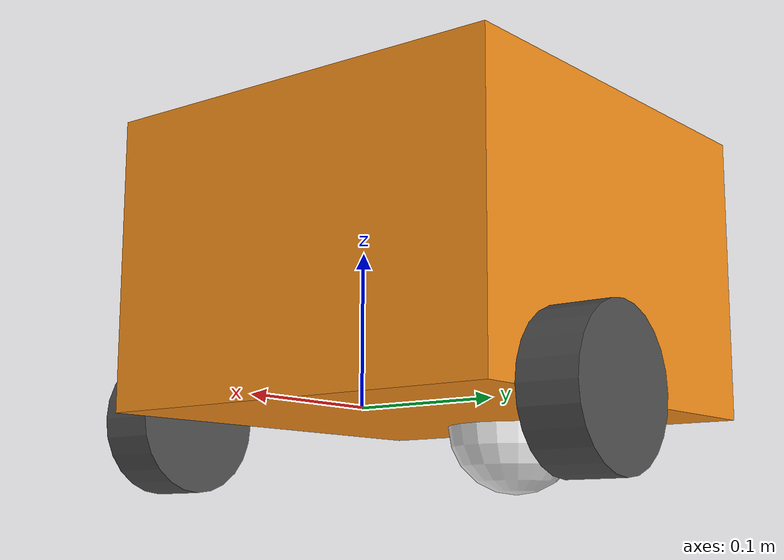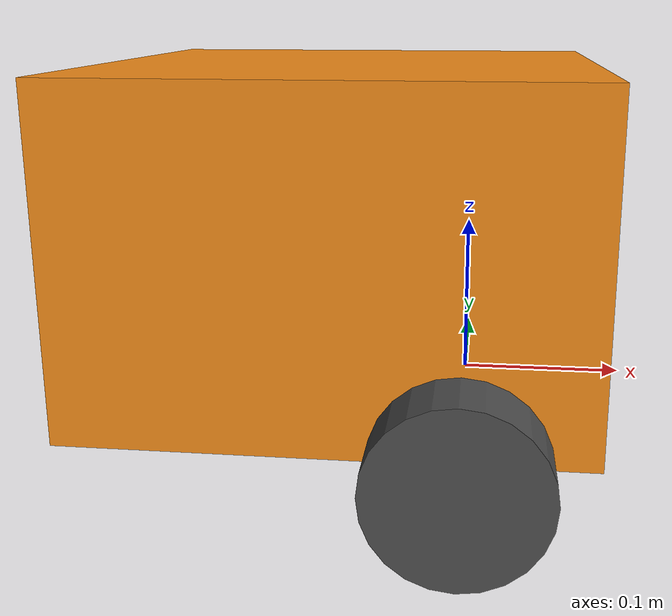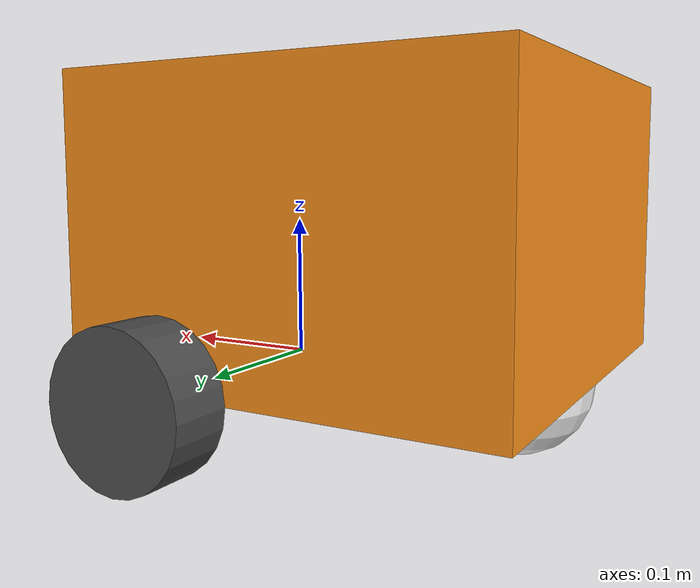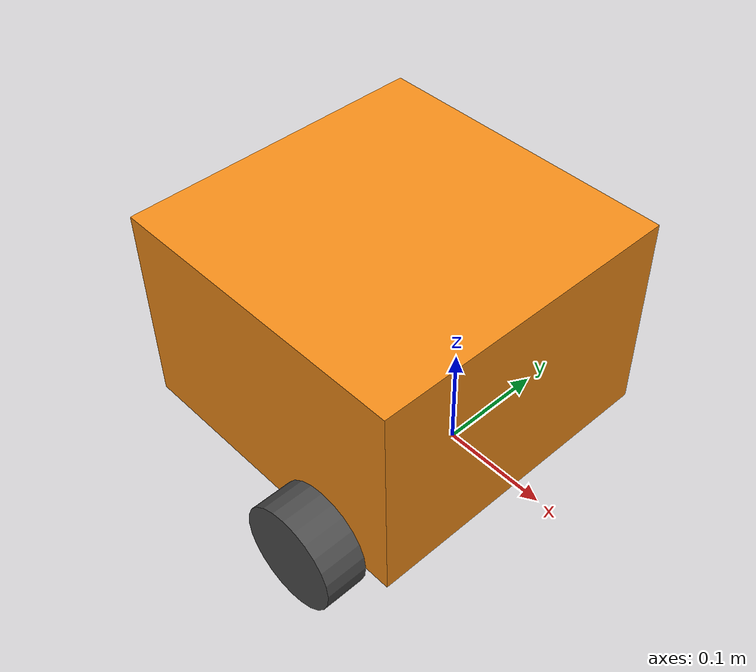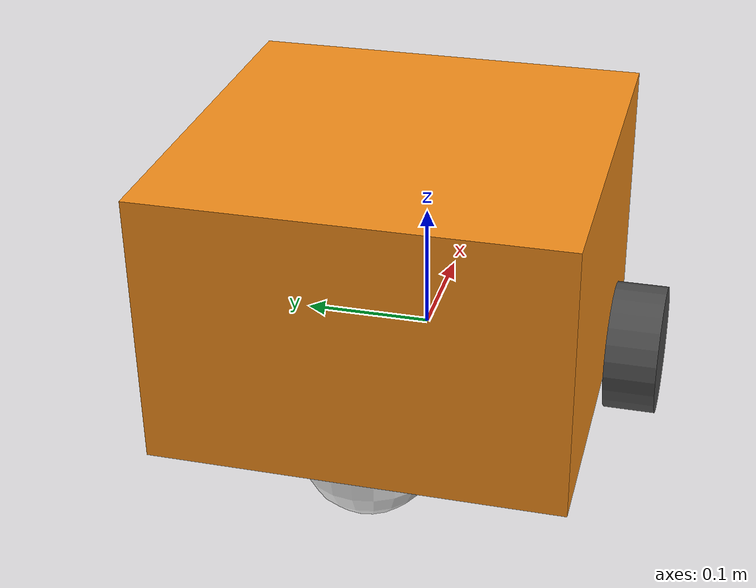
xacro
<?xml version="1.0"?>
<robot xmlns:xacro="http://www.ros.org/wiki/xacro">

  <xacro:include filename="inertial_macros.xacro"/>
  <xacro:include filename="colors.xacro"/>

  <!--  Properties                                                   -->
  <xacro:property name="chassis_length"  value="0.30"/>
  <xacro:property name="chassis_width"   value="0.30"/>
  <xacro:property name="chassis_height"  value="0.20"/>
  <xacro:property name="chassis_mass"    value="5.0"/>

  <xacro:property name="wheel_radius"    value="0.05"/>
  <xacro:property name="wheel_thickness" value="0.04"/>
  <xacro:property name="wheel_mass"      value="0.5"/>
  <xacro:property name="wheel_offset_y"  value="${chassis_width/2 + wheel_thickness/2}"/>
  <xacro:property name="wheel_offset_z"  value="0.0"/>

  <xacro:property name="caster_radius"   value="${wheel_radius}"/>
  <xacro:property name="caster_mass"     value="0.1"/>

  <!--  Base link (footprint on the ground)                          -->
  <link name="base_link"/>

  <!--  Chassis                                                      -->
  <joint name="chassis_joint" type="fixed">
    <parent link="base_link"/>
    <child  link="chassis"/>
    <origin xyz="${-chassis_length*3/4} 0 ${wheel_radius}" rpy="0 0 0"/>
  </joint>

  <link name="chassis">
    <visual>
      <origin xyz="${chassis_length/2} 0 ${chassis_height/4}" rpy="0 0 0"/>
      <geometry>
        <box size="${chassis_length} ${chassis_width} ${chassis_height}"/>
      </geometry>
      <material name="orange"/>
    </visual>
    <collision>
      <origin xyz="${chassis_length/2} 0 ${chassis_height/4}" rpy="0 0 0"/>
      <geometry>
        <box size="${chassis_length} ${chassis_width} ${chassis_height}"/>
      </geometry>
    </collision>
    <xacro:inertial_box mass="${chassis_mass}" x="${chassis_length}" y="${chassis_width}" z="${chassis_height}">
      <origin xyz="${chassis_length/2} 0 ${chassis_height/2}" rpy="0 0 0"/>
    </xacro:inertial_box>
  </link>

  <gazebo reference="chassis">
    <material>Gazebo/Orange</material>
  </gazebo>

  <!--  Drive wheels (left / right)                                  -->
  <xacro:macro name="drive_wheel" params="prefix y_reflect">
    <joint name="${prefix}_wheel_joint" type="continuous">
      <parent link="base_link"/>
      <child  link="${prefix}_wheel"/>
      <origin xyz="0 ${y_reflect * wheel_offset_y} ${wheel_offset_z}" rpy="${-pi/2} 0 0"/>
      <axis xyz="0 0 1"/>
    </joint>

    <link name="${prefix}_wheel">
      <visual>
        <geometry>
          <cylinder radius="${wheel_radius}" length="${wheel_thickness}"/>
        </geometry>
        <material name="dark_grey"/>
      </visual>
      <collision>
        <geometry>
          <cylinder radius="${wheel_radius}" length="${wheel_thickness}"/>
        </geometry>
      </collision>
      <xacro:inertial_cylinder mass="${wheel_mass}" length="${wheel_thickness}" radius="${wheel_radius}">
        <origin xyz="0 0 0" rpy="0 0 0"/>
      </xacro:inertial_cylinder>
    </link>

    <gazebo reference="${prefix}_wheel">
      <material>Gazebo/DarkGrey</material>
      <mu1>1.0</mu1>
      <mu2>1.0</mu2>
    </gazebo>
  </xacro:macro>

  <xacro:drive_wheel prefix="left"  y_reflect="1"/>
  <xacro:drive_wheel prefix="right" y_reflect="-1"/>

  <!--  Caster wheel (rear, frictionless ball)                       -->
  <joint name="caster_wheel_joint" type="fixed">
    <parent link="chassis"/>
    <child  link="caster_wheel"/>
    <origin xyz="${caster_radius} 0 ${-wheel_radius}" rpy="0 0 0"/>
  </joint>

  <link name="caster_wheel">
    <visual>
      <geometry>
        <sphere radius="${caster_radius}"/>
      </geometry>
      <material name="white"/>
    </visual>
    <collision>
      <geometry>
        <sphere radius="${caster_radius}"/>
      </geometry>
    </collision>
    <xacro:inertial_sphere mass="${caster_mass}" radius="${caster_radius}">
      <origin xyz="0 0 0" rpy="0 0 0"/>
    </xacro:inertial_sphere>
  </link>

  <gazebo reference="caster_wheel">
    <material>Gazebo/White</material>
    <mu1>0.001</mu1>
    <mu2>0.001</mu2>
  </gazebo>

</robot>
